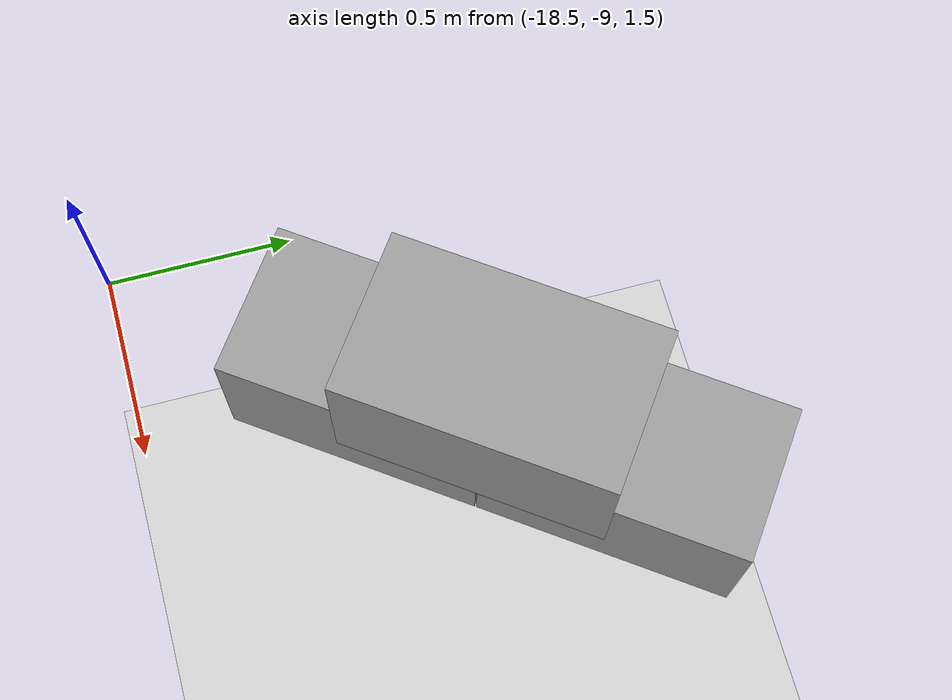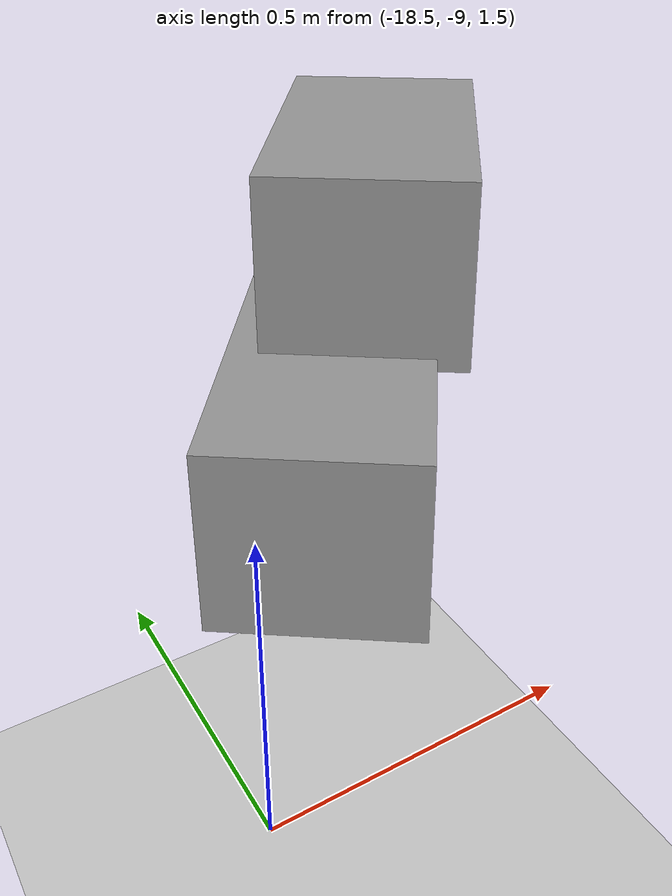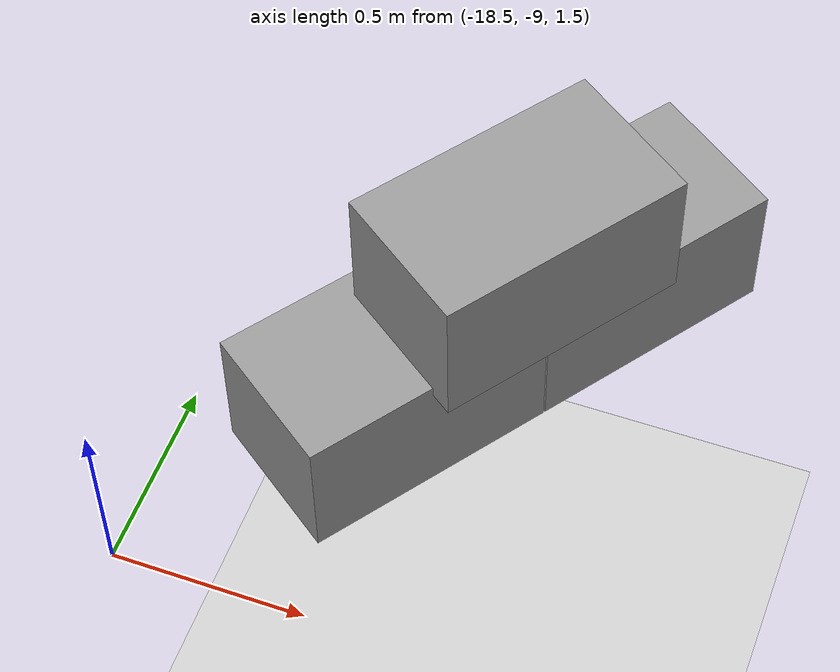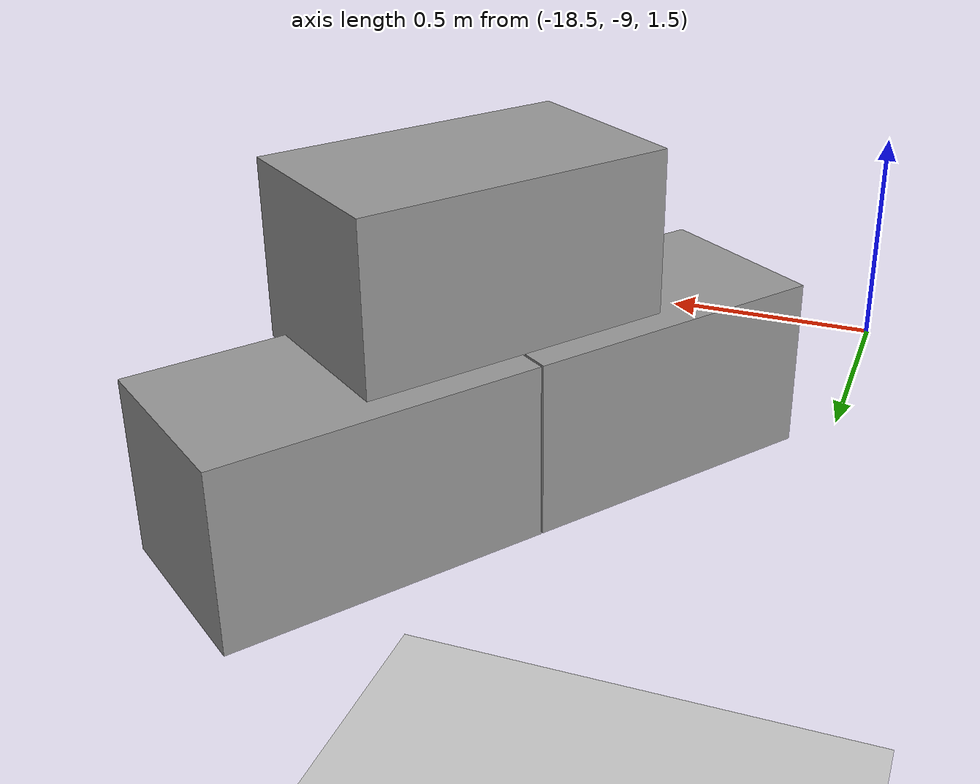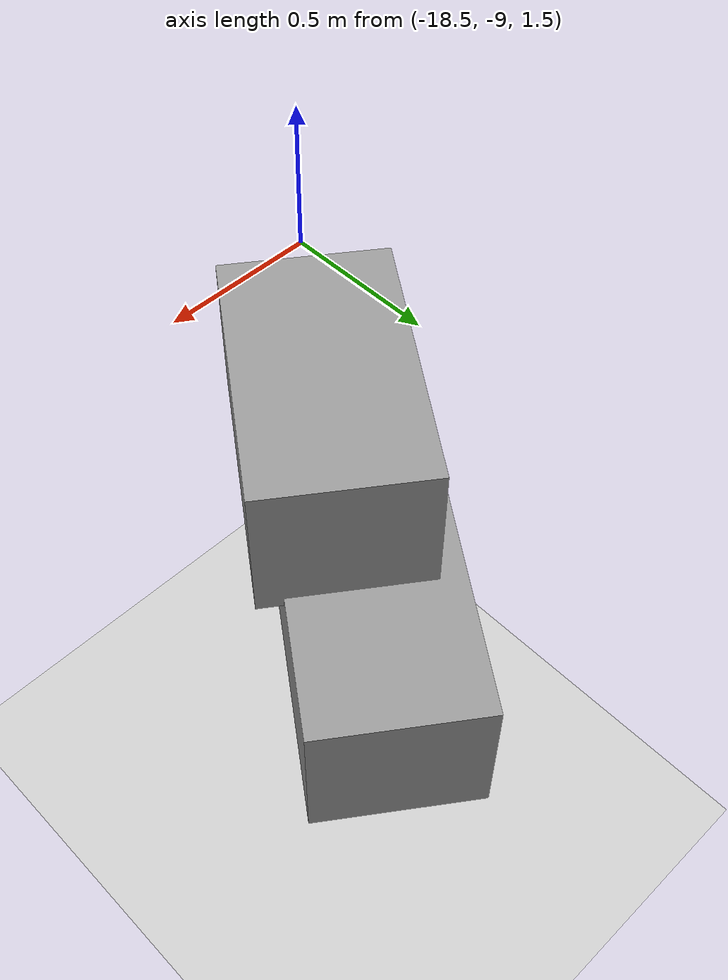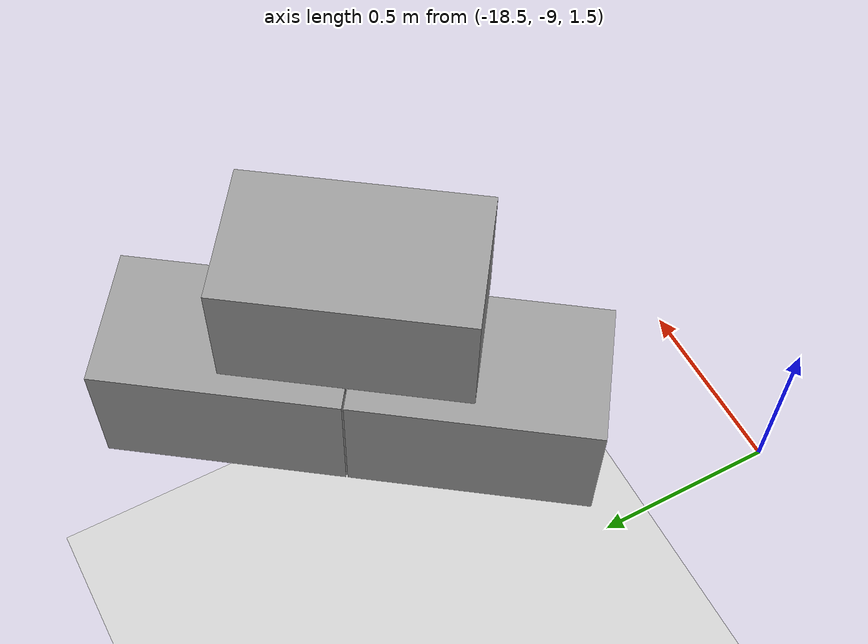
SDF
<sdf version="1.7">
 <world name="default">
  <model name="ground_plane">
   <static>1</static>
   <link name="link">
    <collision name="collision">
     <geometry><plane><normal>0 0 1</normal><size>100 100</size></plane></geometry>
     <surface>
      <contact><collide_bitmask>65535</collide_bitmask></contact>
      <friction><ode><mu>100</mu><mu2>50</mu2></ode></friction>
     </surface>
    </collision>
    <visual name="visual">
     <cast_shadows>0</cast_shadows>
     <geometry><plane><normal>0 0 1</normal><size>100 100</size></plane></geometry>
     <material>
      <script><uri>file://media/materials/scripts/gazebo.material</uri><name>Gazebo/Grey</name></script>
     </material>
    </visual>
   </link>
  </model>
  <model name="Add_Box_clone_clone_3">
   <link name="link">
    <inertial>
     <mass>1</mass>
     <inertia>
      <ixx>0.166667</ixx>
      <ixy>0</ixy>
      <ixz>0</ixz>
      <iyy>0.166667</iyy>
      <iyz>0</iyz>
      <izz>0.166667</izz>
     </inertia>
    </inertial>
    <kinematic>1</kinematic>
    <gravity>0</gravity>
    <visual name="visual">
     <geometry><box><size>0.686 0.406 0.381</size></box></geometry>
     <material>
      <script><name>Gazebo/Grey</name><uri>file://media/materials/scripts/gazebo.material</uri></script>
      <shader type="pixel"><normal_map>__default__</normal_map></shader>
      <ambient>0.3 0.3 0.3 1</ambient>
      <diffuse>0.7 0.7 0.7 1</diffuse>
      <specular>0.01 0.01 0.01 1</specular>
      <emissive>0 0 0 1</emissive>
     </material>
    </visual>
    <collision name="collision">
     <geometry><box><size>1 1 1</size></box></geometry>
     <surface>
      <friction>
       <ode><mu>1</mu><mu2>1</mu2><fdir1>0 0 0</fdir1><slip1>0</slip1><slip2>0</slip2></ode>
       <torsional>
        <coefficient>1</coefficient>
        <patch_radius>0</patch_radius>
        <surface_radius>0</surface_radius>
        <use_patch_radius>1</use_patch_radius>
        <ode><slip>0</slip></ode>
       </torsional>
      </friction>
      <bounce><restitution_coefficient>0</restitution_coefficient><threshold>1e+06</threshold></bounce>
      <contact>
       <collide_without_contact>0</collide_without_contact>
       <collide_without_contact_bitmask>1</collide_without_contact_bitmask>
       <collide_bitmask>1</collide_bitmask>
       <ode>
        <soft_cfm>0</soft_cfm>
        <soft_erp>0.2</soft_erp>
        <kp>1e+13</kp>
        <kd>1</kd>
        <max_vel>0.01</max_vel>
        <min_depth>0</min_depth>
       </ode>
       <bullet>
        <split_impulse>1</split_impulse>
        <split_impulse_penetration_threshold>-0.01</split_impulse_penetration_threshold>
        <soft_cfm>0</soft_cfm>
        <soft_erp>0.2</soft_erp>
        <kp>1e+13</kp>
        <kd>1</kd>
       </bullet>
      </contact>
     </surface>
    </collision>
   </link>
   <link name="link_clone">
    <inertial>
     <mass>1</mass>
     <inertia>
      <ixx>0.166667</ixx>
      <ixy>0</ixy>
      <ixz>0</ixz>
      <iyy>0.166667</iyy>
      <iyz>0</iyz>
      <izz>0.166667</izz>
     </inertia>
    </inertial>
    <pose>-0.343354 -0.063316 0.354303 1e-05 -0 0</pose>
    <gravity>0</gravity>
    <visual name="visual">
     <geometry><box><size>0.686 0.406 0.381</size></box></geometry>
     <material>
      <script><name>Gazebo/Grey</name><uri>file://media/materials/scripts/gazebo.material</uri></script>
      <shader type="pixel"><normal_map>__default__</normal_map></shader>
      <ambient>0.3 0.3 0.3 1</ambient>
      <diffuse>0.7 0.7 0.7 1</diffuse>
      <specular>0.01 0.01 0.01 1</specular>
      <emissive>0 0 0 1</emissive>
     </material>
    </visual>
    <collision name="collision">
     <geometry><box><size>1 1 1</size></box></geometry>
     <surface>
      <friction>
       <ode><mu>1</mu><mu2>1</mu2><fdir1>0 0 0</fdir1><slip1>0</slip1><slip2>0</slip2></ode>
       <torsional>
        <coefficient>1</coefficient>
        <patch_radius>0</patch_radius>
        <surface_radius>0</surface_radius>
        <use_patch_radius>1</use_patch_radius>
        <ode><slip>0</slip></ode>
       </torsional>
      </friction>
      <bounce><restitution_coefficient>0</restitution_coefficient><threshold>1e+06</threshold></bounce>
      <contact>
       <collide_without_contact>0</collide_without_contact>
       <collide_without_contact_bitmask>1</collide_without_contact_bitmask>
       <collide_bitmask>1</collide_bitmask>
       <ode>
        <soft_cfm>0</soft_cfm>
        <soft_erp>0.2</soft_erp>
        <kp>1e+13</kp>
        <kd>1</kd>
        <max_vel>0.01</max_vel>
        <min_depth>0</min_depth>
       </ode>
       <bullet>
        <split_impulse>1</split_impulse>
        <split_impulse_penetration_threshold>-0.01</split_impulse_penetration_threshold>
        <soft_cfm>0</soft_cfm>
        <soft_erp>0.2</soft_erp>
        <kp>1e+13</kp>
        <kd>1</kd>
       </bullet>
      </contact>
     </surface>
    </collision>
   </link>
   <link name="link_clone_clone">
    <inertial>
     <mass>1</mass>
     <inertia>
      <ixx>0.166667</ixx>
      <ixy>0</ixy>
      <ixz>0</ixz>
      <iyy>0.166667</iyy>
      <iyz>0</iyz>
      <izz>0.166667</izz>
     </inertia>
    </inertial>
    <pose>-0.690786 -0.000183 -1e-05 2e-05 -0 0</pose>
    <gravity>0</gravity>
    <visual name="visual">
     <geometry><box><size>0.686 0.406 0.381</size></box></geometry>
     <material>
      <script><name>Gazebo/Grey</name><uri>file://media/materials/scripts/gazebo.material</uri></script>
      <shader type="pixel"><normal_map>__default__</normal_map></shader>
      <ambient>0.3 0.3 0.3 1</ambient>
      <diffuse>0.7 0.7 0.7 1</diffuse>
      <specular>0.01 0.01 0.01 1</specular>
      <emissive>0 0 0 1</emissive>
     </material>
    </visual>
    <collision name="collision">
     <geometry><box><size>1 1 1</size></box></geometry>
     <surface>
      <friction>
       <ode><mu>1</mu><mu2>1</mu2><fdir1>0 0 0</fdir1><slip1>0</slip1><slip2>0</slip2></ode>
       <torsional>
        <coefficient>1</coefficient>
        <patch_radius>0</patch_radius>
        <surface_radius>0</surface_radius>
        <use_patch_radius>1</use_patch_radius>
        <ode><slip>0</slip></ode>
       </torsional>
      </friction>
      <bounce><restitution_coefficient>0</restitution_coefficient><threshold>1e+06</threshold></bounce>
      <contact>
       <collide_without_contact>0</collide_without_contact>
       <collide_without_contact_bitmask>1</collide_without_contact_bitmask>
       <collide_bitmask>1</collide_bitmask>
       <ode>
        <soft_cfm>0</soft_cfm>
        <soft_erp>0.2</soft_erp>
        <kp>1e+13</kp>
        <kd>1</kd>
        <max_vel>0.01</max_vel>
        <min_depth>0</min_depth>
       </ode>
       <bullet>
        <split_impulse>1</split_impulse>
        <split_impulse_penetration_threshold>-0.01</split_impulse_penetration_threshold>
        <soft_cfm>0</soft_cfm>
        <soft_erp>0.2</soft_erp>
        <kp>1e+13</kp>
        <kd>1</kd>
       </bullet>
      </contact>
     </surface>
    </collision>
   </link>
   <static>0</static>
   <pose>-17.6299 -7.80134 1.61518 0 -0 0.950497</pose>
  </model>
 </world>
</sdf>
